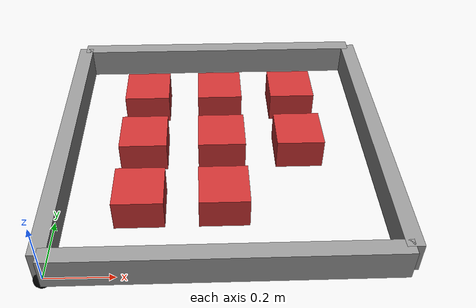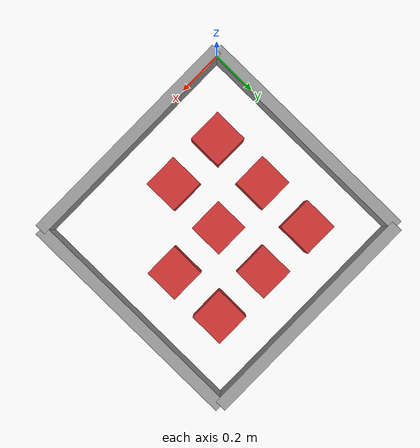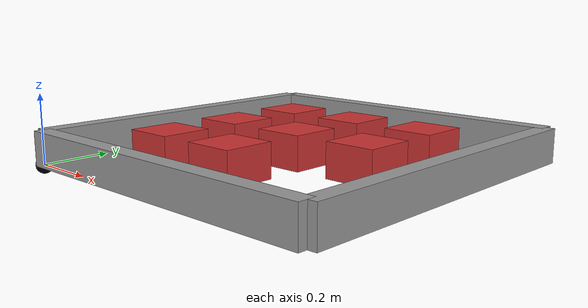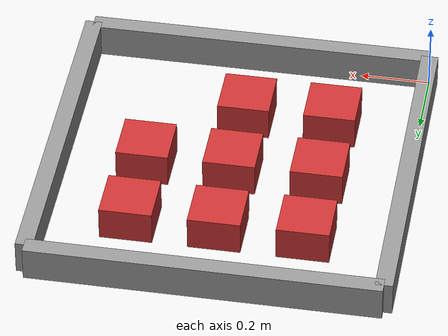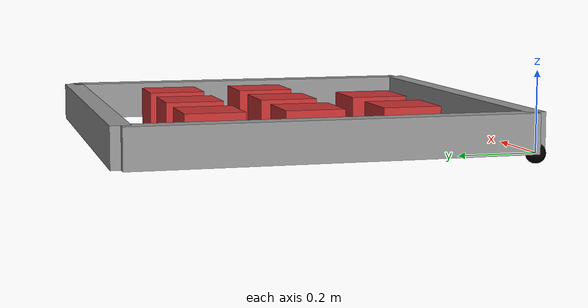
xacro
<?xml version="1.0"?>
<robot xmlns:xacro="http://ros.org/wiki/xacro" name="planar_robot" >

  <xacro:arg name="use_gazebo" default="false"/>
  <xacro:property name="use_gazebo" value="$(arg use_gazebo)"/>

  <xacro:arg name="scenario" default="maze_2"/>
  <xacro:property name="scenario" value="$(arg scenario)"/>

  <xacro:include filename="$(find cartesian_description)/urdf/base_cell.xacro" />
  <xacro:base_cell
    dim    = "2"
    lb_X   = "0.0"
    ub_X   = "1.0"
    lb_Y   = "0.0"
    ub_Y   = "1.0"
    radius = "0.025"
  />

  <xacro:include filename="$(find planar_robot_description)/urdf/planar_robot.ros2_control.xacro" />
  <xacro:planar_robot_ros2_control
    name="PlanarRobotInterfaceHardware"
    use_gazebo="${use_gazebo}"/>

  <xacro:if value="${use_gazebo}">
    <xacro:include filename="$(find planar_robot_description)/urdf/gazebo_integration.xacro"/>
    <xacro:add_gazebo_addons/>
    <gazebo>
      <self_collide>true</self_collide>
    </gazebo>
  </xacro:if>

  <xacro:include filename="$(find planar_robot_description)/urdf/scenarios/${scenario}.xacro" />

</robot>

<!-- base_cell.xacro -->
<robot xmlns:xacro="http://ros.org/wiki/xacro" name="base_cell" >

<xacro:macro name="base_cell" params="
  dim:=3
  ub_X:=1.0
  lb_X:=0.0
  ub_Y:=1.0
  lb_Y:=0.0
  ub_Z:=1.0
  lb_Z:=0.0
  radius:=0.005">

  <xacro:if value="${dim == 2}">
    <xacro:include filename="$(find cartesian_description)/urdf/planar_robot.urdf.xacro" />
    <xacro:planar_robot
      lb_X   = "${lb_X}"
      ub_X   = "${ub_X}"
      lb_Y   = "${lb_Y}"
      ub_Y   = "${ub_Y}"
      radius = "${radius}"/>
  </xacro:if>

  <xacro:if value="${dim == 3}">
    <xacro:include filename="$(find cartesian_description)/urdf/cartesian_robot.urdf.xacro" />
    <xacro:cartesian_robot
      lb_X   = "${lb_X}"
      ub_X   = "${ub_X}"
      lb_Y   = "${lb_Y}"
      ub_Y   = "${ub_Y}"
      lb_Z   = "${lb_Z}"
      ub_Z   = "${ub_Z}"
      radius = "${radius}"/>
  </xacro:if>

  <link name="world"/>

  <joint name="world2cartesian" type="fixed">
    <parent link="world"/>
    <child link="link_X"/>
    <origin xyz="${(ub_X-lb_X)/2} 0.0 0.0"/>
  </joint>

</xacro:macro>
</robot>

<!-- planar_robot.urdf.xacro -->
<robot xmlns:xacro="http://ros.org/wiki/xacro" name="planar_robot" >

  <xacro:macro name="planar_robot" params="
     ub_X:=1.0
     lb_X:=0.0
     ub_Y:=1.0
     lb_Y:=0.0
     radius:=0.005">

  <xacro:property name="velocity" value="0.5" />
  <xacro:property name="effort" value="1.0"/>
  <xacro:property name="mid_point_X" value="${(ub_X-lb_X)/2.0}" />
  <xacro:property name="mid_point_Y" value="${(ub_Y-lb_Y)/2.0}" />

  <xacro:include filename="$(find cartesian_description)/urdf/default_inertial_macro.xacro"/>

  <material name="blue">
    <color rgba="0 0 1 0.5"/>
  </material>
  <material name="green">
    <color rgba="0 1 0 0.5"/>
  </material>
  <material name="red">
    <color rgba="1 0 0 0.5"/>
  </material>
  <material name="black">
    <color rgba="0 0 0 1"/>
  </material>

  <link name="link_Y">
    <inertial>
      <origin xyz="0 0 0" rpy="0 0 0"/>
      <mass value="0.000001"/>
      <inertia
     ixx="0.00000001" ixy="0.0" ixz="0.0" iyy="0.00000001" iyz="0.0" izz="0.00000001"/>
    </inertial>
  </link>

  <link name="link_X">
    <inertial>
      <origin xyz="0 0 0" rpy="0 0 0"/>
      <mass value="0.000001"/>
      <inertia
     ixx="0.00000001" ixy="0.0" ixz="0.0" iyy="0.00000001" iyz="0.0" izz="0.00000001"/>
    </inertial>
  </link>

  <link name="end_effector">
    <xacro:default_inertial/>
    <visual>
      <geometry>
        <sphere radius="${radius}"/>
      </geometry>
      <origin rpy="0 0 0" xyz="0 0 0"/>
      <material name="black"/>
    </visual>
    <collision>
      <origin rpy="0 0 0" xyz="0 0 0"/>
      <geometry>
        <sphere radius="${radius}"/>
      </geometry>
    </collision>
  </link>

  <joint name="joint_X" type="prismatic">
    <parent link="link_X"/>
    <child link="link_Y"/>
    <axis xyz = "1 0 0" />
    <origin rpy="0 0 0" xyz="${-mid_point_X} ${mid_point_Y} 0"/>
    <limit effort="${effort}" lower="${lb_X}" upper="${ub_X}" velocity="${velocity}"/>
    <dynamics damping="0.01" friction="0.01"/>
  </joint>

  <joint name="joint_Y" type="prismatic">
    <parent link="link_Y"/>
    <child link="end_effector"/>
    <axis xyz = "0 1 0" />
    <origin rpy="0 0 0" xyz="0.0 ${-mid_point_Y} 0.0"/>
    <limit effort="${effort}" lower="${lb_Y}" upper="${ub_Y}" velocity="${velocity}"/>
    <dynamics damping="0.01" friction="0.01"/>
  </joint>

</xacro:macro>
</robot>

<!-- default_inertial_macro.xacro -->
<robot xmlns:xacro="http://ros.org/wiki/xacro">

  <xacro:macro name="default_inertial" params="">
    <inertial>
      <origin xyz="0 0 0" rpy="0 0 0"/>
      <mass value="1"/>
      <inertia
     ixx="0.1" ixy="0.0" ixz="0.0" iyy="0.1" iyz="0.0" izz="0.1"/>
    </inertial>
  </xacro:macro>

</robot>

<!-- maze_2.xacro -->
<robot xmlns:xacro="http://ros.org/wiki/xacro" name="maze">

  <!-- === Shared properties === -->
  <xacro:property name="wall_height" value="0.1"/>
  <xacro:property name="wall_thickness" value="0.05"/>
  <xacro:property name="pillar_radius" value="0.05"/>
  <xacro:property name="pillar_height" value="0.1"/>
  <xacro:property name="x_offset" value="0.5"/>
  <xacro:property name="y_offset" value="0.5"/>
  <xacro:property name="box_height" value="0.1"/>

  <link name="maze_base_link"/>
  <joint name="maze_world_joint" type="fixed">
    <parent link="world"/>
    <child link="maze_base_link"/>
    <origin xyz="${x_offset} ${y_offset} 0" rpy="0 0 0"/>
  </joint>

  <!-- === Wall Macro === -->
  <xacro:macro name="maze_wall" params="name length x y yaw">
    <link name="${name}_link">
      <visual>
        <origin xyz="0 0 ${wall_height / 2}" rpy="0 0 0"/>
        <geometry>
          <box size="${length} ${wall_thickness} ${wall_height}"/>
        </geometry>
        <material name="gray">
          <color rgba="0.6 0.6 0.6 1.0"/>
        </material>
      </visual>
      <collision>
        <origin xyz="0 0 ${wall_height / 2}" rpy="0 0 0"/>
        <geometry>
          <box size="${length} ${wall_thickness} ${wall_height}"/>
        </geometry>
      </collision>
      <inertial>
        <mass value="100000.0"/>
        <origin xyz="0 0 ${wall_height / 2}" rpy="0 0 0"/>
        <inertia ixx="1000" ixy="0" ixz="0" iyy="1000" iyz="0" izz="1000"/>
      </inertial>
    </link>
    <joint name="${name}_joint" type="fixed">
      <parent link="maze_base_link"/>
      <child link="${name}_link"/>
      <origin xyz="${x} ${y} 0" rpy="0 0 ${yaw}"/>
    </joint>
  </xacro:macro>

  <!-- === Pillar Macro === -->
  <xacro:macro name="maze_pillar" params="name x y">
    <link name="${name}_link">
      <visual>
        <origin xyz="0 0 ${pillar_height / 2}" rpy="0 0 0"/>
        <geometry>
          <cylinder length="${pillar_height}" radius="${pillar_radius}"/>
        </geometry>
        <material name="dark_gray">
          <color rgba="0.3 0.3 0.3 1.0"/>
        </material>
      </visual>
      <collision>
        <origin xyz="0 0 ${pillar_height / 2}" rpy="0 0 0"/>
        <geometry>
          <cylinder length="${pillar_height}" radius="${pillar_radius}"/>
        </geometry>
      </collision>
      <inertial>
        <mass value="100000.0"/>
        <origin xyz="0 0 ${pillar_height / 2}" rpy="0 0 0"/>
        <inertia ixx="0.01" ixy="0" ixz="0" iyy="0.01" iyz="0" izz="0.01"/>
      </inertial>
    </link>
    <joint name="${name}_joint" type="fixed">
      <parent link="maze_base_link"/>
      <child link="${name}_link"/>
      <origin xyz="${x} ${y} 0" rpy="0 0 0"/>
    </joint>
  </xacro:macro>

  <!-- === Parameterized Box Obstacle Macro === -->
  <xacro:macro name="maze_box" params="name x y size">
    <link name="${name}_link">
      <visual>
        <origin xyz="0 0 ${box_height / 2}" rpy="0 0 0"/>
        <geometry>
          <box size="${size} ${size} ${box_height}"/>
        </geometry>
        <material name="red">
          <color rgba="0.8 0.2 0.2 1.0"/>
        </material>
      </visual>
      <collision>
        <origin xyz="0 0 ${box_height / 2}" rpy="0 0 0"/>
        <geometry>
          <box size="${size} ${size} ${box_height}"/>
        </geometry>
      </collision>
      <inertial>
        <mass value="1000.0"/>
        <origin xyz="0 0 ${size / 2}" rpy="0 0 0"/>
        <inertia ixx="1" ixy="0" ixz="0" iyy="1" iyz="0" izz="1"/>
      </inertial>
    </link>
    <joint name="${name}_joint" type="fixed">
      <parent link="maze_base_link"/>
      <child link="${name}_link"/>
      <origin xyz="${x} ${y} 0" rpy="0 0 0"/>
    </joint>
  </xacro:macro>

  <!-- === Outer square (1x1m boundary) === -->
  <xacro:maze_wall name="boundary_top"    length="1.0" x="0.0" y="0.5" yaw="0.0"/>
  <xacro:maze_wall name="boundary_bottom" length="1.0" x="0.0" y="-0.5" yaw="0.0"/>
  <xacro:maze_wall name="boundary_left"   length="1.0" x="-0.5" y="0.0" yaw="1.5708"/>
  <xacro:maze_wall name="boundary_right"  length="1.0" x="0.5" y="0.0" yaw="1.5708"/>

  <!-- === Eight Box Obstacles === -->
  <xacro:maze_box name="box_1" x="-0.25" y="-0.25" size="0.15"/>
  <xacro:maze_box name="box_2" x="-0.25" y="0.0" size="0.15"/>
  <xacro:maze_box name="box_3" x="-0.25" y="0.25" size="0.15"/>
  <xacro:maze_box name="box_4" x="0.0" y="-0.25" size="0.15"/>
  <xacro:maze_box name="box_5" x="0.0" y="0.0" size="0.15"/>
  <xacro:maze_box name="box_6" x="0.0" y="0.25" size="0.15"/>
  <xacro:maze_box name="box_7" x="0.25" y="0.0" size="0.15"/>
  <xacro:maze_box name="box_8" x="0.25" y="0.25" size="0.15"/>

</robot>
